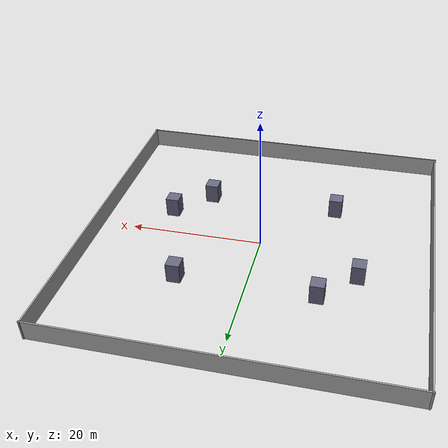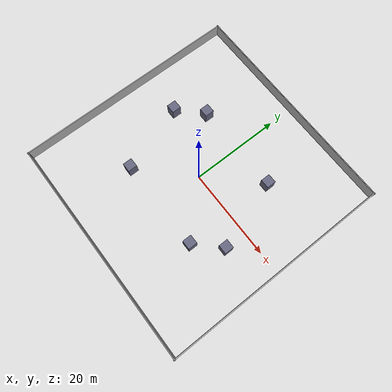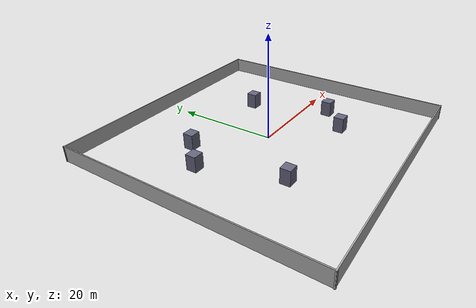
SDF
<?xml version="1.0"?>
<sdf version="1.6">
  <world name="warehouse">
    <physics name="ode" type="ode">
      <real_time_update_rate>50.0</real_time_update_rate>
      <max_step_size>0.05</max_step_size>
    </physics>
    <gravity>0 0 -9.80665</gravity>
    <plugin name="gazebo_ros_state" filename="libgazebo_ros_state.so">
      <ros><namespace>/</namespace></ros>
      <update_rate>10.0</update_rate>
    </plugin>
    <include><uri>model://sun</uri></include>
    <model name="ground_plane">
      <static>true</static><pose>0 0 0 0 0 0</pose>
      <link name="link">
        <collision name="collision">
          <geometry><plane><normal>0 0 1</normal><size>100 100</size></plane></geometry>
          <surface><friction><ode><mu>100</mu><mu2>50</mu2></ode></friction></surface>
        </collision>
      </link>
    </model>
    <!-- 外墙 50x50 (x,y∈[-25,25], 高 3m 厂房) -->
    <model name="wall_north"><static>true</static><pose>0 25 1.5 0 0 0</pose>
      <link name="link">
        <collision name="c"><geometry><box><size>50.4 0.2 3.0</size></box></geometry></collision>
        <visual name="v"><geometry><box><size>50.4 0.2 3.0</size></box></geometry>
          <material><ambient>0.7 0.7 0.7 1</ambient></material></visual>
      </link></model>
    <model name="wall_south"><static>true</static><pose>0 -25 1.5 0 0 0</pose>
      <link name="link">
        <collision name="c"><geometry><box><size>50.4 0.2 3.0</size></box></geometry></collision>
        <visual name="v"><geometry><box><size>50.4 0.2 3.0</size></box></geometry>
          <material><ambient>0.7 0.7 0.7 1</ambient></material></visual>
      </link></model>
    <model name="wall_east"><static>true</static><pose>25 0 1.5 0 0 0</pose>
      <link name="link">
        <collision name="c"><geometry><box><size>0.2 50.4 3.0</size></box></geometry></collision>
        <visual name="v"><geometry><box><size>0.2 50.4 3.0</size></box></geometry>
          <material><ambient>0.7 0.7 0.7 1</ambient></material></visual>
      </link></model>
    <model name="wall_west"><static>true</static><pose>-25 0 1.5 0 0 0</pose>
      <link name="link">
        <collision name="c"><geometry><box><size>0.2 50.4 3.0</size></box></geometry></collision>
        <visual name="v"><geometry><box><size>0.2 50.4 3.0</size></box></geometry>
          <material><ambient>0.7 0.7 0.7 1</ambient></material></visual>
      </link></model>
    <!-- 柱子/货架 (2x2m box 高 3m, 间隔 ~10m, 障碍但开放空间充足) -->
    <model name="pillar_1"><static>true</static><pose>10 10 1.5 0 0 0</pose>
      <link name="link">
        <collision name="c"><geometry><box><size>2.0 2.0 3.0</size></box></geometry></collision>
        <visual name="v"><geometry><box><size>2.0 2.0 3.0</size></box></geometry>
          <material><ambient>0.4 0.4 0.5 1</ambient></material></visual>
      </link></model>
    <model name="pillar_2"><static>true</static><pose>-10 10 1.5 0 0 0</pose>
      <link name="link">
        <collision name="c"><geometry><box><size>2.0 2.0 3.0</size></box></geometry></collision>
        <visual name="v"><geometry><box><size>2.0 2.0 3.0</size></box></geometry>
          <material><ambient>0.4 0.4 0.5 1</ambient></material></visual>
      </link></model>
    <model name="pillar_3"><static>true</static><pose>10 -10 1.5 0 0 0</pose>
      <link name="link">
        <collision name="c"><geometry><box><size>2.0 2.0 3.0</size></box></geometry></collision>
        <visual name="v"><geometry><box><size>2.0 2.0 3.0</size></box></geometry>
          <material><ambient>0.4 0.4 0.5 1</ambient></material></visual>
      </link></model>
    <model name="pillar_4"><static>true</static><pose>-10 -10 1.5 0 0 0</pose>
      <link name="link">
        <collision name="c"><geometry><box><size>2.0 2.0 3.0</size></box></geometry></collision>
        <visual name="v"><geometry><box><size>2.0 2.0 3.0</size></box></geometry>
          <material><ambient>0.4 0.4 0.5 1</ambient></material></visual>
      </link></model>
    <model name="pillar_5"><static>true</static><pose>15 -5 1.5 0 0 0</pose>
      <link name="link">
        <collision name="c"><geometry><box><size>2.0 2.0 3.0</size></box></geometry></collision>
        <visual name="v"><geometry><box><size>2.0 2.0 3.0</size></box></geometry>
          <material><ambient>0.4 0.4 0.5 1</ambient></material></visual>
      </link></model>
    <model name="pillar_6"><static>true</static><pose>-15 5 1.5 0 0 0</pose>
      <link name="link">
        <collision name="c"><geometry><box><size>2.0 2.0 3.0</size></box></geometry></collision>
        <visual name="v"><geometry><box><size>2.0 2.0 3.0</size></box></geometry>
          <material><ambient>0.4 0.4 0.5 1</ambient></material></visual>
      </link></model>
  </world>
</sdf>
